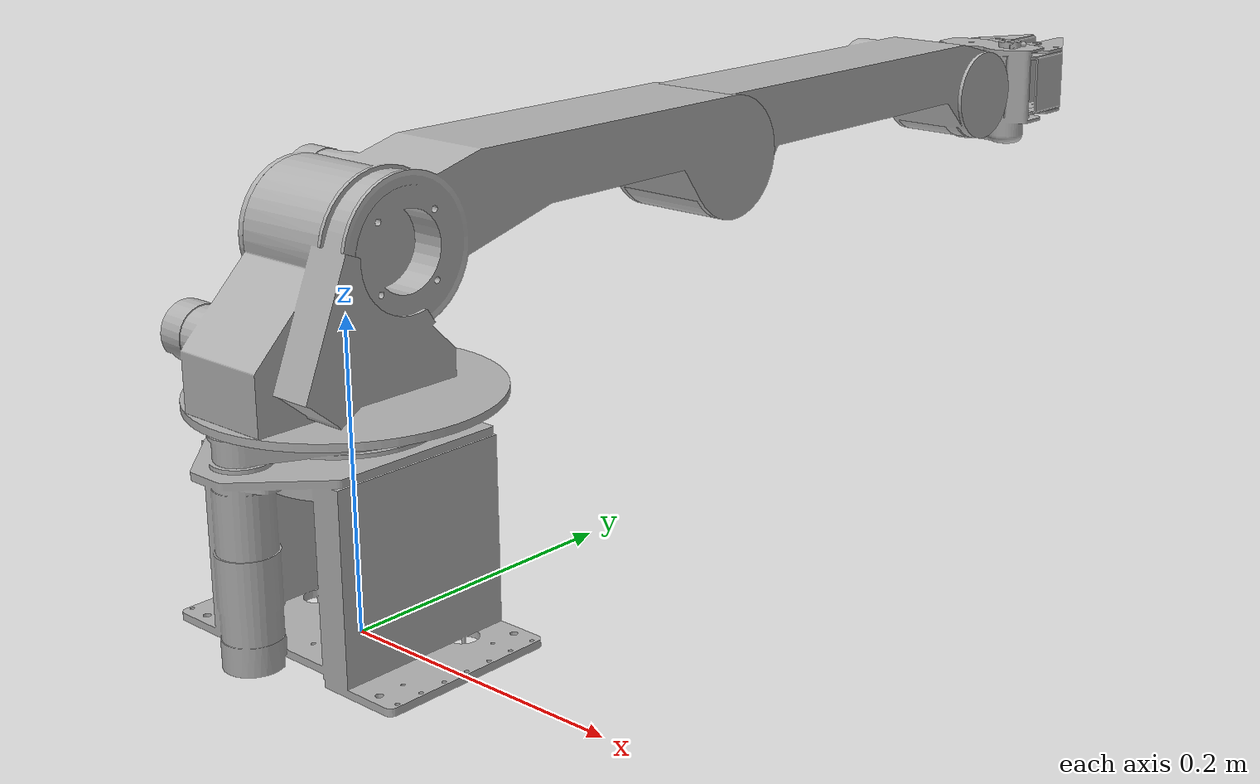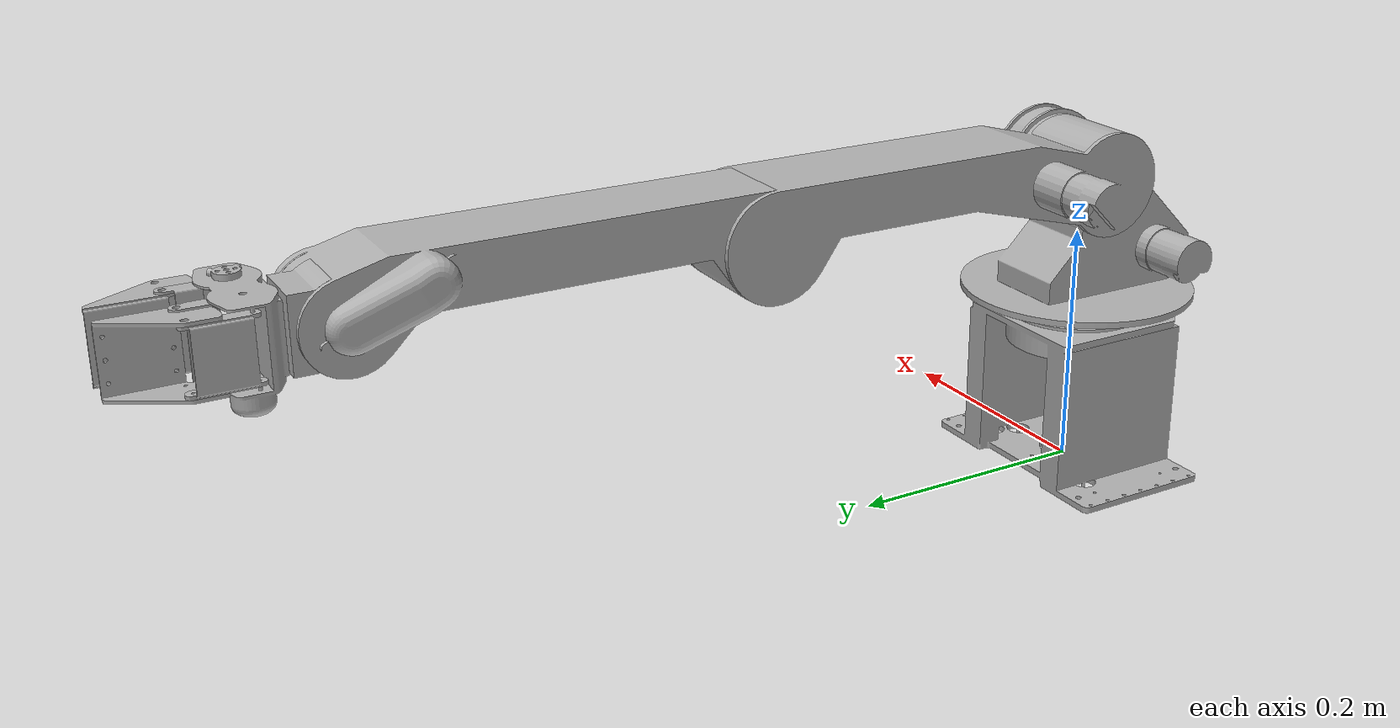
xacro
<?xml version="1.0"?>
<robot xmlns:xacro="http://www.ros.org/wiki/xacro" name="amir">
    <xacro:arg name="ros2_control_hardware_type" default="mock_components" />

    <!-- Import amir urdf file -->
    <xacro:include filename="$(find amir_description)/urdf/amir.xacro" />

    <!-- Import control_xacro -->
    <xacro:include filename="amir.ros2_control.xacro" />

    <xacro:amir_ros2_control ros2_control_hardware_type="$(arg ros2_control_hardware_type)"/>

</robot>

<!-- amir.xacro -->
<robot name="amir" xmlns:xacro="http://www.ros.org/wiki/xacro">

<xacro:include filename="$(find amir_description)/urdf/materials.xacro" />
<xacro:include filename="$(find amir_description)/urdf/amir.trans" />
<xacro:include filename="$(find amir_description)/urdf/amir.gazebo" />

<!-- to fix robot in gazebo world -->

<!-- World fixed joint-->

<!-- just added to prevent error -->
<link name="dummy_link" />

<joint name="dummy_joint" type="fixed">
  <origin xyz="0.0 0.0 0.248" rpy="0 0 0"/>
  <parent link="dummy_link"/>
  <child link="link0_1"/>
</joint>

<link name="link0_1">
  <inertial>
    <origin xyz="0.0 -0.018171 -0.164351" rpy="0 0 0"/>
    <mass value="2.37148"/>
    <inertia ixx="0.01020"
             iyy="0.008745"
             izz="0.008637"
             ixy="-0.000000291275"
             iyz="-0.0001135"
             ixz="0.000000428733"/>
  </inertial>
  <visual>
    <origin xyz="0 0 0" rpy="0 0 0"/>
    <geometry>
      <mesh filename="package://amir_description/meshes/base_link.stl" scale="0.001 0.001 0.001"/>
    </geometry>
    <material name="silver-amir"/>
  </visual>
  <collision>
    <origin xyz="0 0 0" rpy="0 0 0"/>
    <geometry>
      <mesh filename="package://amir_description/meshes/base_link.stl" scale="0.001 0.001 0.001"/>
    </geometry>
  </collision>
</link>

<link name="link1_1">
  <inertial>
    <origin xyz="0.00 -0.015481739081542548 0.052015680869348734" rpy="0 0 0"/>
    <mass value="1.530171"/>
    <inertia ixx="0.003518"
             iyy="0.003654"
             izz="0.004561"
             ixy="0.0002342"
             iyz="0.00002134302"
             ixz="-0.000060488629"/>
  </inertial>
  <visual>
    <origin xyz="0.00 0.001523 0.097" rpy="0 0 0"/>
    <geometry>
      <mesh filename="package://amir_description/meshes/link1_1.stl" scale="0.001 0.001 0.001"/>
    </geometry>
    <material name="silver-amir"/>
  </visual>
  <collision>
    <origin xyz="0.00 0.001523 0.097" rpy="0 0 0"/>
    <geometry>
      <mesh filename="package://amir_description/meshes/link1_1.stl" scale="0.001 0.001 0.001"/>
    </geometry>
  </collision>
</link>

<link name="link2_1">
  <inertial>
    <origin xyz="0.00 0.13301271963728503 0.014415028610505691" rpy="0 0 0"/>
    <mass value="1.863224"/>
    <inertia ixx="0.01781"
             iyy="0.003563"
             izz="0.02037"
             ixy="0.002226"
             iyz="-0.0008328"
             ixz="0.0002878"/>
  </inertial>
  <visual>
    <origin xyz="0.0 0.001523 -0.0" rpy="0 0 0"/>
    <geometry>
      <mesh filename="package://amir_description/meshes/link2_1.stl" scale="0.001 0.001 0.001"/>
    </geometry>
    <material name="silver-amir"/>
  </visual>
  <collision>
    <origin xyz="0.0 0.001523 -0.0" rpy="0 0 0"/>
    <geometry>
      <mesh filename="package://amir_description/meshes/link2_1.stl" scale="0.001 0.001 0.001"/>
    </geometry>
  </collision>
</link>

<link name="link3_1">
  <inertial>
    <origin xyz="-0.0 0.11541444998364736 0.013649097933998836" rpy="0 0 0"/>
    <mass value="0.904315"/>
    <inertia ixx="0.01374"
             iyy="0.0009585"
             izz="0.01392"
             ixy="0.0004506"
             iyz="-0.0007046"
             ixz="0.000064200508"/>
  </inertial>
  <visual>
    <origin xyz="-0.0 -0.308477 0.0" rpy="0 0 0"/>
    <geometry>
      <mesh filename="package://amir_description/meshes/link3_1.stl" scale="0.001 0.001 0.001"/>
    </geometry>
    <material name="silver-amir"/>
  </visual>
  <collision>
    <origin xyz="-0.0 -0.308477 0.0" rpy="0 0 0"/>
    <geometry>
      <mesh filename="package://amir_description/meshes/link3_1.stl" scale="0.001 0.001 0.001"/>
    </geometry>
  </collision>
</link>

<link name="link4_1">
  <inertial>
    <origin xyz="0.0 0.002871377179418988 -2.4706069597529916e-10" rpy="0 0 0"/>
    <mass value="0.261183"/>
    <inertia ixx="0.000153"
             iyy="0.000144"
             izz="0.0001626"
             ixy="0.000007504862"
             iyz="-0.000000008483"
             ixz="-0.000000007056"/>
  </inertial>
  <visual>
    <origin xyz="0.0 -0.618477 -0.0" rpy="0 0 0"/>
    <geometry>
      <mesh filename="package://amir_description/meshes/link4_1.stl" scale="0.001 0.001 0.001"/>
    </geometry>
    <material name="silver-amir"/>
  </visual>
  <collision>
    <origin xyz="0.0 -0.618477 -0.0" rpy="0 0 0"/>
    <geometry>
      <mesh filename="package://amir_description/meshes/link4_1.stl" scale="0.001 0.001 0.001"/>
    </geometry>
  </collision>
</link>

<!-- add tool center point link for easier visualization -->
<link name="tcp_link">
  <visual>
    <geometry>
      <box size="0.01 0.01 0.01"/>
    </geometry>
    <material name="red">
      <color rgba="1.0 0.0 0.0 0.6"/>
    </material>
  </visual>
</link>

<joint name="tcp_fixed" type="fixed">
  <origin xyz="0.0 0.0795 0.0" rpy="0 0 0"/>
  <parent link="gripper_base_1"/>
  <child link="tcp_link"/>
</joint>

<link name="gripper_base_1">
  <inertial>
    <origin xyz="0.0 0.01128514374633649 -0.004836003736858561" rpy="0 0 0"/>
    <mass value="0.130337"/>
    <inertia ixx="0.00008551164"
             iyy="0.0001216"
             izz="0.000059771966"
             ixy="-0.000003161031"
             iyz="0.000001110492"
             ixz="-0.000003519581"/>
  </inertial>
  <visual>
    <origin xyz="0.0 -0.658977 -0.0" rpy="0 0 0"/>
    <geometry>
      <mesh filename="package://amir_description/meshes/gripper_base_1.stl" scale="0.001 0.001 0.001"/>
    </geometry>
    <material name="silver-amir"/>
  </visual>
  <collision>
    <origin xyz="0.0 -0.658977 -0.0" rpy="0 0 0"/>
    <geometry>
      <mesh filename="package://amir_description/meshes/gripper_base_1.stl" scale="0.001 0.001 0.001"/>
    </geometry>
  </collision>
</link>

<link name="inner_link_left_1">
  <inertial>
    <origin xyz="0.004775263006022466 0.014691054356398392 0.0" rpy="0 0 0"/>
    <mass value="0.010214"/>
    <inertia ixx="0.000007990586"
             iyy="0.000005973968"
             izz="0.000002702176"
             ixy="-0.000000446816"
             iyz="0.0000"
             ixz="-0.00000"/>
  </inertial>
  <visual>
    <origin xyz="0.018 -0.679499 -0.0" rpy="0 0 0"/>
    <geometry>
      <mesh filename="package://amir_description/meshes/inner_link_left_1.stl" scale="0.001 0.001 0.001"/>
    </geometry>
    <material name="silver-amir"/>
  </visual>
  <collision>
    <origin xyz="0.018 -0.679499 -0.0" rpy="0 0 0"/>
    <geometry>
      <mesh filename="package://amir_description/meshes/inner_link_left_1.stl" scale="0.001 0.001 0.001"/>
    </geometry>
  </collision>
</link>

<link name="outer_link_right_1">
  <inertial>
    <origin xyz="0.0029741808490290345 0.020000417105897617 0.0" rpy="0 0 0"/>
    <mass value="0.015216"/>
    <inertia ixx="0.000009064719"
             iyy="0.000006207691"
             izz="0.000003674706"
             ixy="0.000000861905"
             iyz="-0.0"
             ixz="0.0"/>
  </inertial>
  <visual>
    <origin xyz="-0.038 -0.679499 -0.0" rpy="0 0 0"/>
    <geometry>
      <mesh filename="package://amir_description/meshes/outer_link_right_1.stl" scale="0.001 0.001 0.001"/>
    </geometry>
    <material name="silver-amir"/>
  </visual>
  <collision>
    <origin xyz="-0.038 -0.679499 -0.0" rpy="0 0 0"/>
    <geometry>
      <mesh filename="package://amir_description/meshes/outer_link_right_1.stl" scale="0.001 0.001 0.001"/>
    </geometry>
  </collision>
</link>

<link name="outer_link_left_1">
  <inertial>
    <origin xyz="-0.002974180849028861 0.020000417105899837 0.0" rpy="0 0 0"/>
    <mass value="0.015216"/>
    <inertia ixx="0.000009073869"
             iyy="0.000006198542"
             izz="0.000003674706"
             ixy="-0.000000846555"
             iyz="0.00000"
             ixz="0.00000"/>
  </inertial>
  <visual>
    <origin xyz="0.038 -0.679499 -0.0" rpy="0 0 0"/>
    <geometry>
      <mesh filename="package://amir_description/meshes/outer_link_left_1.stl" scale="0.001 0.001 0.001"/>
    </geometry>
    <material name="silver-amir"/>
  </visual>
  <collision>
    <origin xyz="0.038 -0.679499 -0.0" rpy="0 0 0"/>
    <geometry>
      <mesh filename="package://amir_description/meshes/outer_link_left_1.stl" scale="0.001 0.001 0.001"/>
    </geometry>
  </collision>
</link>

<!-- NOTE: urdf doesnt support kinematic closed loop,
so we need to left one on the joints open -->

<!-- use this when using inner link -->
<link name="finger_right_1">
  <inertial>
    <origin xyz="0.002489444086893569 0.012411313372935995 0.0" rpy="0 0 0"/>
    <mass value="0.022898"/>
    <inertia ixx="0.000017128826"
             iyy="0.000011930401"
             izz="0.000008715513"
             ixy="0.000001953953"
             iyz="0.00"
             ixz="-0.00"/>
  </inertial>
  <visual>
    <origin xyz="-0.018 -0.719499 -0.0" rpy="0 0 0"/>
    <geometry>
      <mesh filename="package://amir_description/meshes/finger_right_1.stl" scale="0.001 0.001 0.001"/>
    </geometry>
    <material name="silver-amir"/>
  </visual>
  <collision>
    <origin xyz="-0.018 -0.719499 -0.0" rpy="0 0 0"/>
    <geometry>
      <mesh filename="package://amir_description/meshes/finger_right_1.stl" scale="0.001 0.001 0.001"/>
    </geometry>
  </collision>
</link>

<link name="finger_left_1">
  <inertial>
    <origin xyz="-0.0024894440868974757 0.012411313372938326 0.0" rpy="0 0 0"/>
    <mass value="0.022898"/>
    <inertia ixx="0.000017128826"
             iyy="0.000011930401"
             izz="0.000008715513"
             ixy="-0.000001953953"
             iyz="0.00"
             ixz="-0.00"/>
  </inertial>
  <visual>
    <origin xyz="0.018 -0.719499 -0.0" rpy="0 0 0"/>
    <geometry>
      <mesh filename="package://amir_description/meshes/finger_left_1.stl" scale="0.001 0.001 0.001"/>
    </geometry>
    <material name="silver-amir"/>
  </visual>
  <collision>
    <origin xyz="0.018 -0.719499 -0.0" rpy="0 0 0"/>
    <geometry>
      <mesh filename="package://amir_description/meshes/finger_left_1.stl" scale="0.001 0.001 0.001"/>
    </geometry>
  </collision>
</link>
<!-- end of inner link -->

<!-- use this when using outer link -->
<!-- end of outer link -->

<link name="inner_link_right_1">
  <inertial>
    <origin xyz="-0.003238561697949489 0.01183851365994859 0.0" rpy="0 0 0"/>
    <mass value="0.009152"/>
    <inertia ixx="0.000006905758"
             iyy="0.000005170951"
             izz="0.000002372537"
             ixy="0.000000349609"
             iyz="0.000000273496"
             ixz="-0.000000039247"/>
  </inertial>
  <visual>
    <origin xyz="-0.018 -0.679499 -0.0" rpy="0 0 0"/>
    <geometry>
      <mesh filename="package://amir_description/meshes/inner_link_right_1.stl" scale="0.001 0.001 0.001"/>
    </geometry>
    <material name="silver-amir"/>
  </visual>
  <collision>
    <origin xyz="-0.018 -0.679499 -0.0" rpy="0 0 0"/>
    <geometry>
      <mesh filename="package://amir_description/meshes/inner_link_right_1.stl" scale="0.001 0.001 0.001"/>
    </geometry>
  </collision>
</link>

<joint name="Joint_1" type="revolute">
  <origin xyz="-0.0 -0.001523 -0.097" rpy="0 0 0"/>
  <parent link="link0_1"/>
  <child link="link1_1"/>
  <axis xyz="0.0 0.0 1.0"/>
  <limit upper="2.96706" lower="-2.96706" effort="33" velocity="1"/>
  <dynamics damping="0.6" friction="0.3" />
</joint>

<joint name="Joint_2" type="revolute">
  <origin xyz="-0.0 0.0 0.097" rpy="0 0 0"/>
  <parent link="link1_1"/>
  <child link="link2_1"/>
  <axis xyz="1.0 0.0 0.0"/>
  <limit upper="2.356194" lower="0" effort="22" velocity="1"/>
  <dynamics damping="0.6" friction="0.3" />
</joint>

<joint name="Joint_3" type="revolute">
  <origin xyz="0.0 0.31 -0.0" rpy="0 0 0"/>
  <parent link="link2_1"/>
  <child link="link3_1"/>
  <axis xyz="1.0 0.0 0.0"/>
  <limit upper="0.0" lower="-2.792527" effort="26" velocity="1"/>
  <dynamics damping="0.6" friction="0.3" />
</joint>

<joint name="Joint_4" type="revolute">
  <origin xyz="-0.0 0.31 0.0" rpy="0 0 0"/>
  <parent link="link3_1"/>
  <child link="link4_1"/>
  <axis xyz="1.0 0.0 0.0"/>
  <limit lower="-2.094395" upper="1.308997" effort="1.3" velocity="1"/>
  <dynamics damping="0.3" friction="0.1" />
</joint>

<joint name="Joint_5" type="revolute">
  <origin xyz="0.0 0.0405 0.0" rpy="0 0 0"/>
  <parent link="link4_1"/>
  <child link="gripper_base_1"/>
  <axis xyz="0.0 1.0 0.0"/>
  <limit lower="-2.75762" upper="2.75762" effort="0.4" velocity="2"/>
  <dynamics damping="0.3" friction="0.1" />
</joint>

<joint name="Gripper" type="revolute">
  <origin xyz="0.018367 0.020522 0.0" rpy="0 0 0"/>
  <parent link="gripper_base_1"/>
  <child link="inner_link_right_1"/>
  <axis xyz="0.0 0.0 1.0"/>
  <limit lower="-1.047198" upper="0.261799" effort="0.4" velocity="2"/>
</joint>

<joint name="left_inner_back_joint" type="continuous">
  <origin xyz="-0.017633 0.020522 0.0" rpy="0 0 0"/>
  <parent link="gripper_base_1"/>
  <child link="inner_link_left_1"/>
  <axis xyz="0.0 0.0 -1.0"/>
  <mimic joint="Gripper" multiplier="1" offset="0" />
</joint>

<joint name="right_outer_back_joint" type="continuous">
  <origin xyz="0.038367 0.020522 0.0" rpy="0 0 0"/>
  <parent link="gripper_base_1"/>
  <child link="outer_link_right_1"/>
  <axis xyz="0.0 0.0 1.0"/>
  <mimic joint="Gripper" multiplier="1" offset="0" />
</joint>

<joint name="left_outer_back_joint" type="continuous">
  <origin xyz="-0.037633 0.020522 0.0" rpy="0 0 0"/>
  <parent link="gripper_base_1"/>
  <child link="outer_link_left_1"/>
  <axis xyz="0.0 0.0 -1.0"/>
  <mimic joint="Gripper" multiplier="1" offset="0" />
</joint>

<!-- use this when using inner joint -->
<joint name="right_inner_front_joint" type="continuous">
  <origin xyz="0.0 0.04 0.0" rpy="0 0 0"/>
  <parent link="inner_link_right_1"/>
  <child link="finger_right_1"/>
  <axis xyz="0.0 0.0 -1.0"/>
  <mimic joint="Gripper" multiplier="1" offset="0" />
</joint>

<joint name="left_inner_front_joint" type="continuous">
  <origin xyz="-0.0 0.04 0.0" rpy="0 0 0"/>
  <parent link="inner_link_left_1"/>
  <child link="finger_left_1"/>
  <axis xyz="0.0 0.0 1.0"/>
  <mimic joint="Gripper" multiplier="1" offset="0" />
</joint>
<!-- end of inner joint -->

<!-- use this when using outer joint -->
<!-- end of outer joint -->

</robot>

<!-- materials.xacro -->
<robot name="amir" xmlns:xacro="http://www.ros.org/wiki/xacro" >

<material name="silver-amir">
  <color rgba="0.699 0.699 0.699 1.000"/>
</material>

</robot>

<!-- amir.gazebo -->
<robot name="amir" xmlns:xacro="http://www.ros.org/wiki/xacro" >

<xacro:property name="body_color" value="Gazebo/Silver" />

<gazebo>
  <plugin name="mimic_joint_plugin" filename="libroboticsgroup_upatras_gazebo_mimic_joint_plugin.so">
    <joint>Gripper</joint>
    <mimicJoint>left_inner_back_joint</mimicJoint>
    <multiplier>1.0</multiplier>
    <offset>0</offset>
    <maxEffort>10.0</maxEffort>
  </plugin>
</gazebo>

<gazebo>
  <plugin name="mimic_joint_plugin" filename="libroboticsgroup_upatras_gazebo_mimic_joint_plugin.so">
    <joint>Gripper</joint>
    <mimicJoint>left_outer_back_joint</mimicJoint>
    <multiplier>1.0</multiplier>
    <offset>0</offset>
    <maxEffort>10.0</maxEffort>
  </plugin>
</gazebo>

<gazebo>
  <plugin name="mimic_joint_plugin" filename="libroboticsgroup_upatras_gazebo_mimic_joint_plugin.so">
    <joint>Gripper</joint>
    <mimicJoint>right_outer_back_joint</mimicJoint>
    <multiplier>1.0</multiplier>
    <offset>0</offset>
    <maxEffort>10.0</maxEffort>
  </plugin>
</gazebo>

<gazebo>
  <plugin name="mimic_joint_plugin" filename="libroboticsgroup_upatras_gazebo_mimic_joint_plugin.so">
    <joint>Gripper</joint>
    <mimicJoint>left_inner_front_joint</mimicJoint>
    <multiplier>1.0</multiplier>
    <offset>0</offset>
    <maxEffort>10.0</maxEffort>
  </plugin>
</gazebo>

<gazebo>
  <plugin name="mimic_joint_plugin" filename="libroboticsgroup_upatras_gazebo_mimic_joint_plugin.so">
    <joint>Gripper</joint>
    <mimicJoint>right_inner_front_joint</mimicJoint>
    <multiplier>1.0</multiplier>
    <offset>0</offset>
    <maxEffort>10.0</maxEffort>
  </plugin>
</gazebo>

<gazebo>
  <plugin name="gazebo_ros_control" filename="libgazebo_ros_control.so">
    <controlPeriod>0.001</controlPeriod>
  </plugin>
</gazebo>

<gazebo reference="link0_1">
  <material>${body_color}</material>
  <mu1>1.4</mu1>
  <mu2>1.4</mu2>
  <selfCollide>true</selfCollide>
  <gravity>true</gravity>
</gazebo>

<gazebo reference="link1_1">
  <material>${body_color}</material>
  <mu1>1.4</mu1>
  <mu2>1.4</mu2>
  <selfCollide>true</selfCollide>
</gazebo>

<gazebo reference="link2_1">
  <material>${body_color}</material>
  <mu1>1.4</mu1>
  <mu2>1.4</mu2>
  <selfCollide>true</selfCollide>
</gazebo>

<gazebo reference="link3_1">
  <material>${body_color}</material>
  <mu1>1.4</mu1>
  <mu2>1.4</mu2>
  <selfCollide>true</selfCollide>
</gazebo>

<gazebo reference="link4_1">
  <material>${body_color}</material>
  <mu1>1.4</mu1>
  <mu2>1.4</mu2>
  <selfCollide>true</selfCollide>
</gazebo>

<gazebo reference="tcp_link">
  <material>Gazebo/RedTransparent</material>
</gazebo>

<gazebo reference="gripper_base_1">
  <material>${body_color}</material>
  <mu1>1.4</mu1>
  <mu2>1.4</mu2>
  <selfCollide>true</selfCollide>
</gazebo>

<gazebo reference="inner_link_left_1">
  <material>${body_color}</material>
  <mu1>1.4</mu1>
  <mu2>1.4</mu2>
  <selfCollide>false</selfCollide>
</gazebo>

<gazebo reference="outer_link_right_1">
  <material>${body_color}</material>
  <mu1>1.4</mu1>
  <mu2>1.4</mu2>
  <selfCollide>false</selfCollide>
</gazebo>

<gazebo reference="outer_link_left_1">
  <material>${body_color}</material>
  <mu1>1.4</mu1>
  <mu2>1.4</mu2>
  <selfCollide>false</selfCollide>
</gazebo>

<gazebo reference="finger_right_1">
  <material>${body_color}</material>
  <mu1>1.4</mu1>
  <mu2>1.4</mu2>
  <selfCollide>false</selfCollide>
</gazebo>

<gazebo reference="finger_left_1">
  <material>${body_color}</material>
  <mu1>1.4</mu1>
  <mu2>1.4</mu2>
  <selfCollide>false</selfCollide>
</gazebo>

<gazebo reference="inner_link_right_1">
  <material>${body_color}</material>
  <mu1>1.4</mu1>
  <mu2>1.4</mu2>
  <selfCollide>false</selfCollide>
</gazebo>

</robot>
